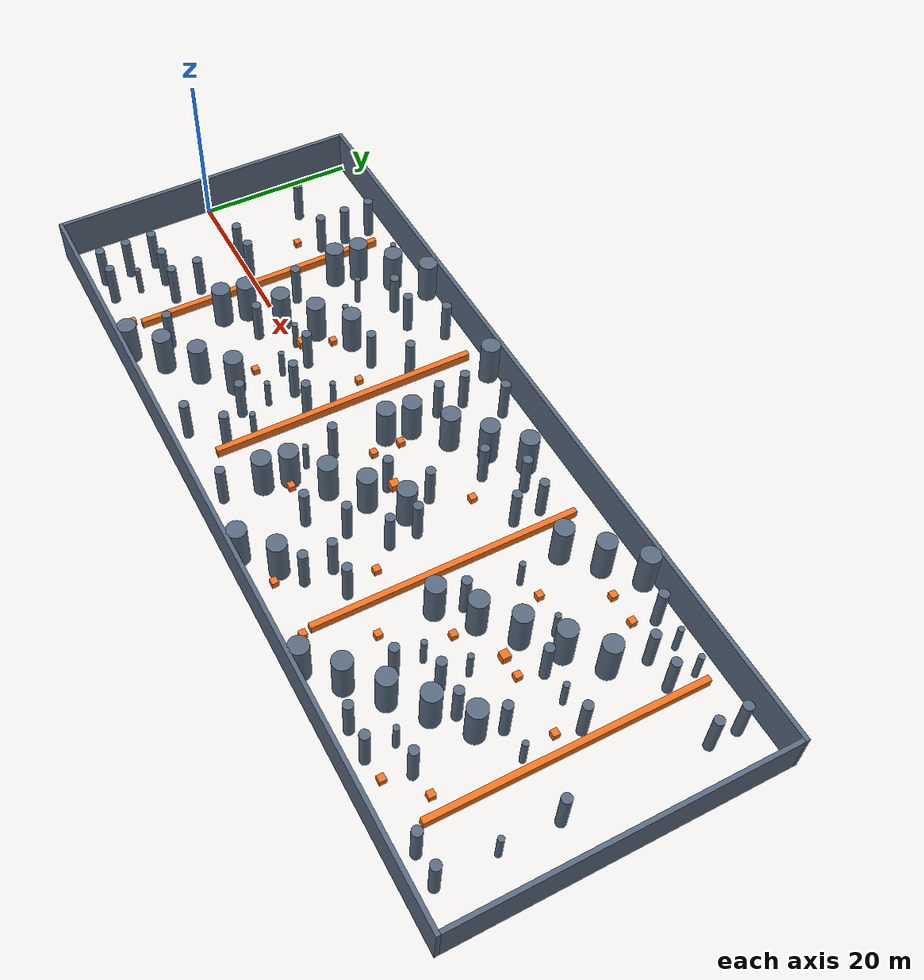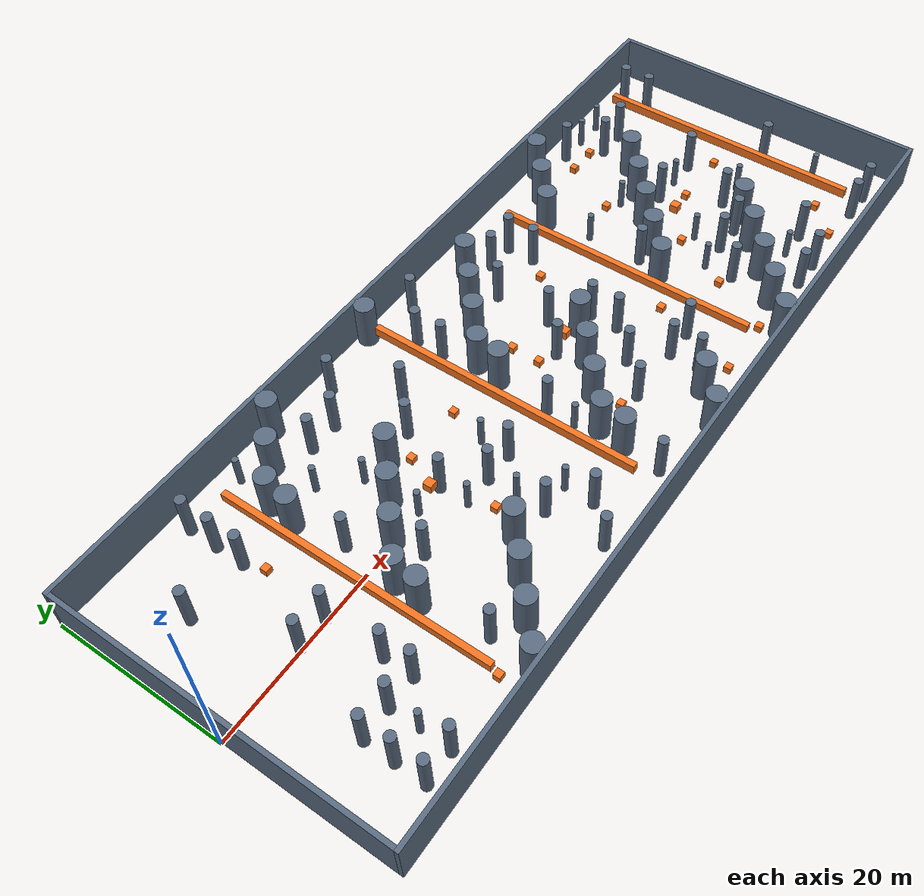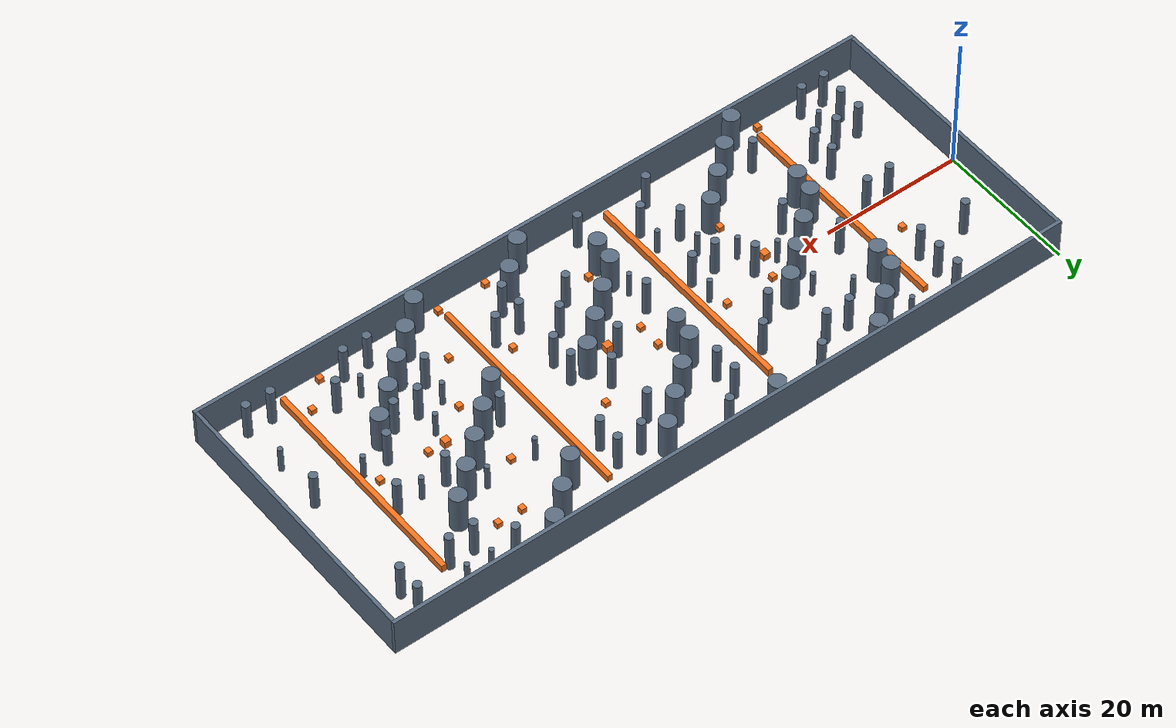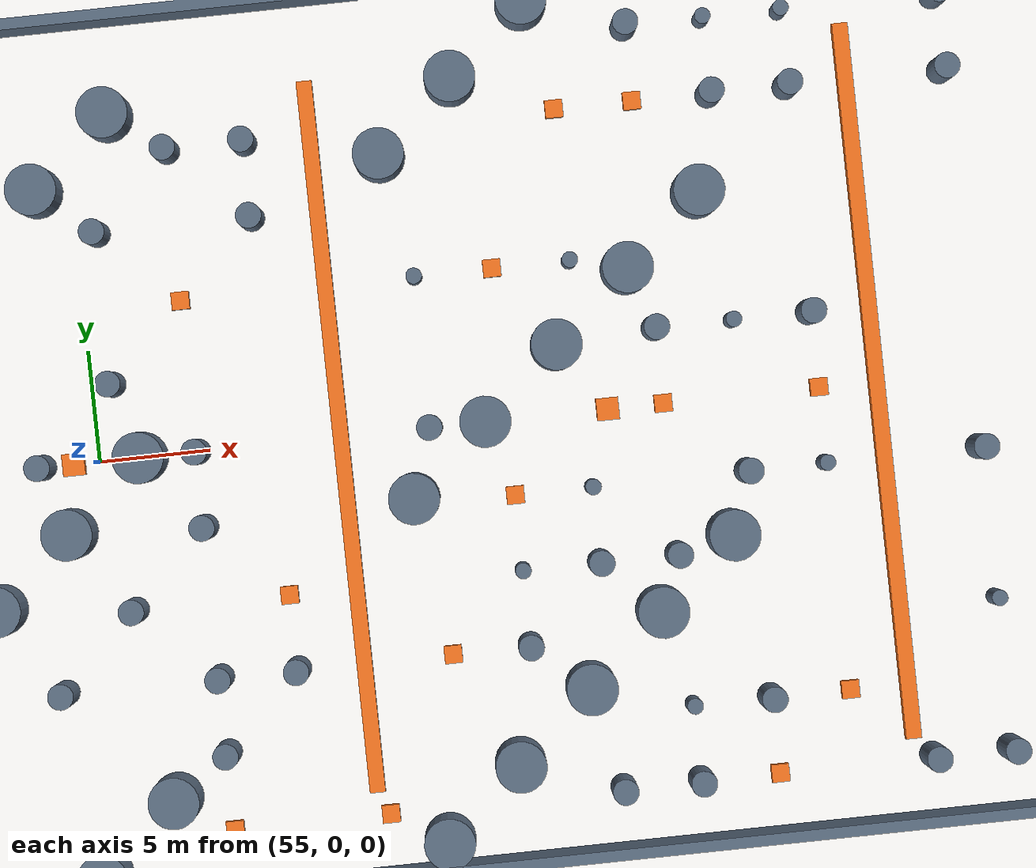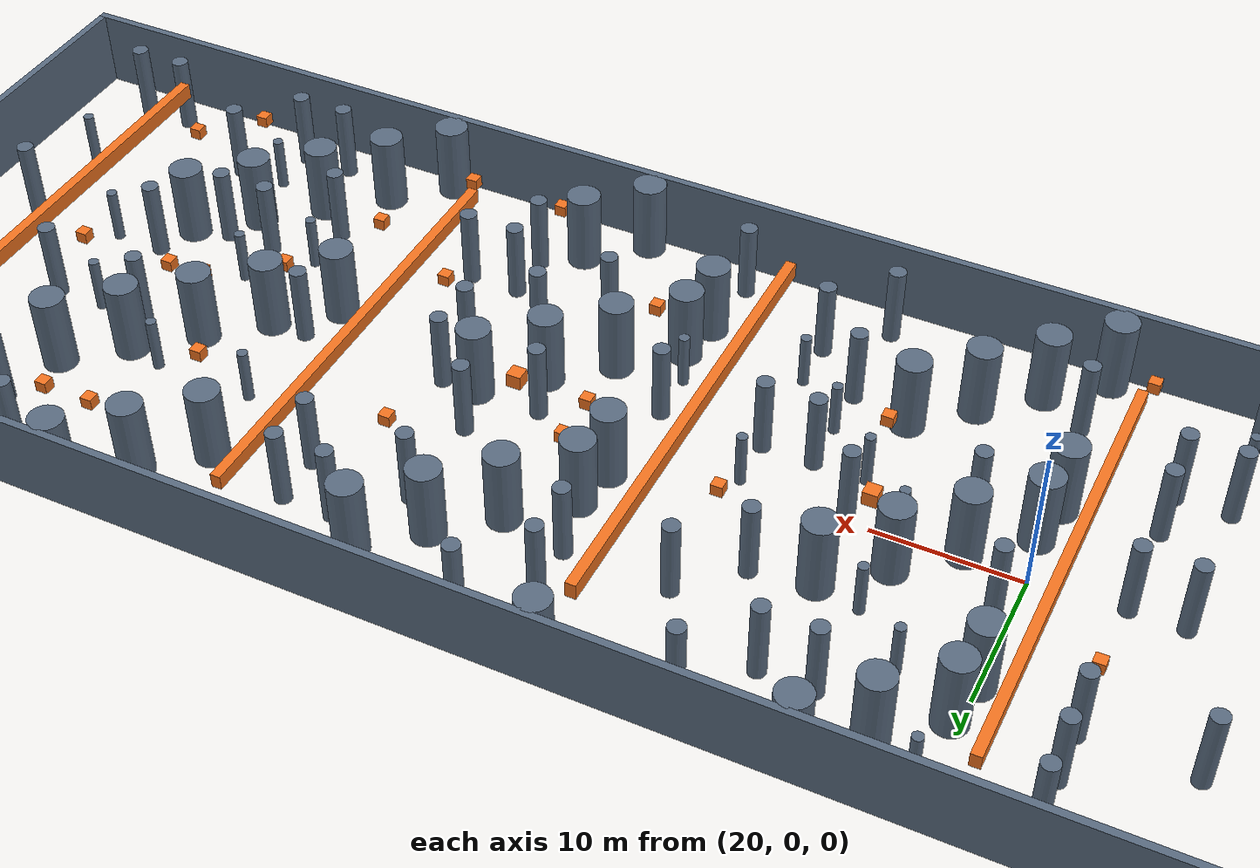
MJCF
<mujoco model="D06">
  <compiler angle="radian" />
  <include file="boundary.xml" />
  <custom>
    <text name="scene_metadata" data="{&quot;id&quot;: &quot;D06&quot;, &quot;difficulty&quot;: &quot;hard&quot;, &quot;title&quot;: &quot;Hybrid long 3D moving gates with moving crossbars&quot;, &quot;source&quot;: &quot;NavRL+P2M&quot;, &quot;dynamic&quot;: true, &quot;review_duration_s&quot;: 45.0, &quot;target_field_obstacles&quot;: 150, &quot;layout_policy&quot;: &quot;retained v4 3D extension; long crossbars vertically oscillate; no reserved route&quot;, &quot;benchmark_role&quot;: &quot;3d-extension&quot;, &quot;topology_acceptance&quot;: {&quot;require_direct_route_blocked&quot;: true, &quot;require_reachable&quot;: true, &quot;max_full_length_straight_lanes&quot;: 0, &quot;max_clear_straight_run_m&quot;: 35.0}, &quot;moving_crossbars&quot;: 4, &quot;obstacle_metadata&quot;: [{&quot;role&quot;: &quot;moving_crossbar&quot;}, {&quot;role&quot;: &quot;layout_core&quot;}, {&quot;role&quot;: &quot;moving_crossbar&quot;}, {&quot;role&quot;: &quot;layout_core&quot;}, {&quot;role&quot;: &quot;moving_crossbar&quot;}, {&quot;role&quot;: &quot;layout_core&quot;}, {&quot;role&quot;: &quot;moving_crossbar&quot;}, {&quot;role&quot;: &quot;anti_straight&quot;}, {&quot;role&quot;: &quot;anti_straight&quot;}, {&quot;role&quot;: &quot;anti_straight&quot;}, {&quot;role&quot;: &quot;anti_straight&quot;}, {&quot;role&quot;: &quot;anti_straight&quot;}, {&quot;role&quot;: &quot;anti_straight&quot;}, {&quot;role&quot;: &quot;anti_straight&quot;}, {&quot;role&quot;: &quot;anti_straight&quot;}, {&quot;role&quot;: &quot;anti_straight&quot;}, {&quot;role&quot;: &quot;anti_straight&quot;}, {&quot;role&quot;: &quot;anti_straight&quot;}, {&quot;role&quot;: &quot;anti_straight&quot;}, {&quot;role&quot;: &quot;anti_straight&quot;}, {&quot;role&quot;: &quot;anti_straight&quot;}, {&quot;role&quot;: &quot;anti_straight&quot;}, {&quot;role&quot;: &quot;anti_straight&quot;}, {&quot;role&quot;: &quot;anti_straight&quot;}, {&quot;role&quot;: &quot;anti_straight&quot;}, {&quot;role&quot;: &quot;anti_straight&quot;}, {&quot;role&quot;: &quot;anti_straight&quot;}, {&quot;role&quot;: &quot;anti_straight&quot;}, {&quot;role&quot;: &quot;anti_straight&quot;}, {&quot;role&quot;: &quot;anti_straight&quot;}, {&quot;role&quot;: &quot;anti_straight&quot;}, {&quot;role&quot;: &quot;anti_straight&quot;}, {&quot;role&quot;: &quot;anti_straight&quot;}, {&quot;role&quot;: &quot;anti_straight&quot;}, {&quot;role&quot;: &quot;anti_straight&quot;}, {&quot;role&quot;: &quot;anti_straight&quot;}, {&quot;role&quot;: &quot;anti_straight&quot;}, {&quot;role&quot;: &quot;anti_straight&quot;}, {&quot;role&quot;: &quot;anti_straight&quot;}, {&quot;role&quot;: &quot;anti_straight&quot;}, {&quot;role&quot;: &quot;anti_straight&quot;}, {&quot;role&quot;: &quot;anti_straight&quot;}, {&quot;role&quot;: &quot;anti_straight&quot;}, {&quot;role&quot;: &quot;anti_straight&quot;}, {&quot;role&quot;: &quot;anti_straight&quot;}, {&quot;role&quot;: &quot;anti_straight&quot;}, {&quot;role&quot;: &quot;dynamic_field&quot;}, {&quot;role&quot;: &quot;field&quot;}, {&quot;role&quot;: &quot;field&quot;}, {&quot;role&quot;: &quot;field&quot;}, {&quot;role&quot;: &quot;field&quot;}, {&quot;role&quot;: &quot;dynamic_field&quot;}, {&quot;role&quot;: &quot;field&quot;}, {&quot;role&quot;: &quot;field&quot;}, {&quot;role&quot;: &quot;field&quot;}, {&quot;role&quot;: &quot;field&quot;}, {&quot;role&quot;: &quot;dynamic_field&quot;}, {&quot;role&quot;: &quot;field&quot;}, {&quot;role&quot;: &quot;field&quot;}, {&quot;role&quot;: &quot;field&quot;}, {&quot;role&quot;: &quot;field&quot;}, {&quot;role&quot;: &quot;dynamic_field&quot;}, {&quot;role&quot;: &quot;field&quot;}, {&quot;role&quot;: &quot;field&quot;}, {&quot;role&quot;: &quot;field&quot;}, {&quot;role&quot;: &quot;field&quot;}, {&quot;role&quot;: &quot;dynamic_field&quot;}, {&quot;role&quot;: &quot;field&quot;}, {&quot;role&quot;: &quot;field&quot;}, {&quot;role&quot;: &quot;field&quot;}, {&quot;role&quot;: &quot;field&quot;}, {&quot;role&quot;: &quot;dynamic_field&quot;}, {&quot;role&quot;: &quot;field&quot;}, {&quot;role&quot;: &quot;field&quot;}, {&quot;role&quot;: &quot;field&quot;}, {&quot;role&quot;: &quot;field&quot;}, {&quot;role&quot;: &quot;dynamic_field&quot;}, {&quot;role&quot;: &quot;field&quot;}, {&quot;role&quot;: &quot;field&quot;}, {&quot;role&quot;: &quot;field&quot;}, {&quot;role&quot;: &quot;field&quot;}, {&quot;role&quot;: &quot;dynamic_field&quot;}, {&quot;role&quot;: &quot;field&quot;}, {&quot;role&quot;: &quot;field&quot;}, {&quot;role&quot;: &quot;field&quot;}, {&quot;role&quot;: &quot;field&quot;}, {&quot;role&quot;: &quot;dynamic_field&quot;}, {&quot;role&quot;: &quot;field&quot;}, {&quot;role&quot;: &quot;field&quot;}, {&quot;role&quot;: &quot;field&quot;}, {&quot;role&quot;: &quot;field&quot;}, {&quot;role&quot;: &quot;dynamic_field&quot;}, {&quot;role&quot;: &quot;field&quot;}, {&quot;role&quot;: &quot;field&quot;}, {&quot;role&quot;: &quot;field&quot;}, {&quot;role&quot;: &quot;field&quot;}, {&quot;role&quot;: &quot;dynamic_field&quot;}, {&quot;role&quot;: &quot;field&quot;}, {&quot;role&quot;: &quot;field&quot;}, {&quot;role&quot;: &quot;field&quot;}, {&quot;role&quot;: &quot;field&quot;}, {&quot;role&quot;: &quot;dynamic_field&quot;}, {&quot;role&quot;: &quot;field&quot;}, {&quot;role&quot;: &quot;field&quot;}, {&quot;role&quot;: &quot;field&quot;}, {&quot;role&quot;: &quot;field&quot;}, {&quot;role&quot;: &quot;dynamic_field&quot;}, {&quot;role&quot;: &quot;field&quot;}, {&quot;role&quot;: &quot;field&quot;}, {&quot;role&quot;: &quot;field&quot;}, {&quot;role&quot;: &quot;field&quot;}, {&quot;role&quot;: &quot;dynamic_field&quot;}, {&quot;role&quot;: &quot;field&quot;}, {&quot;role&quot;: &quot;field&quot;}, {&quot;role&quot;: &quot;field&quot;}, {&quot;role&quot;: &quot;field&quot;}, {&quot;role&quot;: &quot;dynamic_field&quot;}, {&quot;role&quot;: &quot;field&quot;}, {&quot;role&quot;: &quot;field&quot;}, {&quot;role&quot;: &quot;field&quot;}, {&quot;role&quot;: &quot;field&quot;}, {&quot;role&quot;: &quot;dynamic_field&quot;}, {&quot;role&quot;: &quot;field&quot;}, {&quot;role&quot;: &quot;field&quot;}, {&quot;role&quot;: &quot;field&quot;}, {&quot;role&quot;: &quot;field&quot;}, {&quot;role&quot;: &quot;dynamic_field&quot;}, {&quot;role&quot;: &quot;field&quot;}, {&quot;role&quot;: &quot;field&quot;}, {&quot;role&quot;: &quot;field&quot;}, {&quot;role&quot;: &quot;field&quot;}, {&quot;role&quot;: &quot;dynamic_field&quot;}, {&quot;role&quot;: &quot;field&quot;}, {&quot;role&quot;: &quot;field&quot;}, {&quot;role&quot;: &quot;field&quot;}, {&quot;role&quot;: &quot;field&quot;}, {&quot;role&quot;: &quot;dynamic_field&quot;}, {&quot;role&quot;: &quot;field&quot;}, {&quot;role&quot;: &quot;field&quot;}, {&quot;role&quot;: &quot;field&quot;}, {&quot;role&quot;: &quot;field&quot;}, {&quot;role&quot;: &quot;dynamic_field&quot;}, {&quot;role&quot;: &quot;field&quot;}, {&quot;role&quot;: &quot;field&quot;}, {&quot;role&quot;: &quot;field&quot;}, {&quot;role&quot;: &quot;field&quot;}, {&quot;role&quot;: &quot;dynamic_field&quot;}, {&quot;role&quot;: &quot;field&quot;}, {&quot;role&quot;: &quot;field&quot;}, {&quot;role&quot;: &quot;field&quot;}]}" />
  </custom>
  <worldbody>
    <body name="obstacle_4" mocap="true" pos="18 0 2.7000000000000002" user="2 0 0 0.69999999999999996 8 0.25">
      <geom name="obstacle_geom_4" type="box" size="0.34999999999999998 16 0.5" rgba="0.95 0.45 0.12 1" />
    </body>
    <body name="obstacle_5" mocap="true" pos="30 0 3" user="2 0 7 0 9 0.20000000000000001">
      <geom name="obstacle_geom_5" type="box" size="0.5 0.5 0.5" rgba="0.95 0.45 0.12 1" />
    </body>
    <body name="obstacle_6" mocap="true" pos="42 0 4.5" user="2 0 0 0.5 9 0.75">
      <geom name="obstacle_geom_6" type="box" size="0.34999999999999998 16 0.55000000000000004" rgba="0.95 0.45 0.12 1" />
    </body>
    <body name="obstacle_7" mocap="true" pos="54 0 3" user="2 0 7 0 10 0.59999999999999998">
      <geom name="obstacle_geom_7" type="box" size="0.5 0.5 0.5" rgba="0.95 0.45 0.12 1" />
    </body>
    <body name="obstacle_8" mocap="true" pos="66 0 2.7000000000000002" user="2 0 0 0.69999999999999996 10 0.25">
      <geom name="obstacle_geom_8" type="box" size="0.34999999999999998 16 0.5" rgba="0.95 0.45 0.12 1" />
    </body>
    <body name="obstacle_9" mocap="true" pos="78 0 3" user="2 0 7 0 11 0.34999999999999998">
      <geom name="obstacle_geom_9" type="box" size="0.5 0.5 0.5" rgba="0.95 0.45 0.12 1" />
    </body>
    <body name="obstacle_10" mocap="true" pos="90 0 4.4000000000000004" user="2 0 0 0.5 11 0.75">
      <geom name="obstacle_geom_10" type="box" size="0.34999999999999998 16 0.55000000000000004" rgba="0.95 0.45 0.12 1" />
    </body>
    <body name="obstacle_11" mocap="true" pos="20.5 -18.5 3.25" user="0 0 0 0 0 0">
      <geom name="obstacle_geom_11" type="cylinder" size="1.1499999999999999 2.75" rgba="0.35 0.42 0.5 1" />
    </body>
    <body name="obstacle_12" mocap="true" pos="24 -15.416666666666666 3.25" user="0 0 0 0 0 0">
      <geom name="obstacle_geom_12" type="cylinder" size="1.1499999999999999 2.75" rgba="0.35 0.42 0.5 1" />
    </body>
    <body name="obstacle_13" mocap="true" pos="27.5 -12.333333333333332 3.25" user="0 0 0 0 0 0">
      <geom name="obstacle_geom_13" type="cylinder" size="1.1499999999999999 2.75" rgba="0.35 0.42 0.5 1" />
    </body>
    <body name="obstacle_14" mocap="true" pos="31 -9.25 3.25" user="0 0 0 0 0 0">
      <geom name="obstacle_geom_14" type="cylinder" size="1.1499999999999999 2.75" rgba="0.35 0.42 0.5 1" />
    </body>
    <body name="obstacle_15" mocap="true" pos="20 -6.1666666666666661 3.25" user="0 0 0 0 0 0">
      <geom name="obstacle_geom_15" type="cylinder" size="1.1499999999999999 2.75" rgba="0.35 0.42 0.5 1" />
    </body>
    <body name="obstacle_16" mocap="true" pos="20.5 -3.0833333333333321 3.25" user="0 0 0 0 0 0">
      <geom name="obstacle_geom_16" type="cylinder" size="1.1499999999999999 2.75" rgba="0.35 0.42 0.5 1" />
    </body>
    <body name="obstacle_17" mocap="true" pos="24 0 3.25" user="0 0 0 0 0 0">
      <geom name="obstacle_geom_17" type="cylinder" size="1.1499999999999999 2.75" rgba="0.35 0.42 0.5 1" />
    </body>
    <body name="obstacle_18" mocap="true" pos="27.5 3.0833333333333357 3.25" user="0 0 0 0 0 0">
      <geom name="obstacle_geom_18" type="cylinder" size="1.1499999999999999 2.75" rgba="0.35 0.42 0.5 1" />
    </body>
    <body name="obstacle_19" mocap="true" pos="31 6.1666666666666679 3.25" user="0 0 0 0 0 0">
      <geom name="obstacle_geom_19" type="cylinder" size="1.1499999999999999 2.75" rgba="0.35 0.42 0.5 1" />
    </body>
    <body name="obstacle_20" mocap="true" pos="20 9.25 3.25" user="0 0 0 0 0 0">
      <geom name="obstacle_geom_20" type="cylinder" size="1.1499999999999999 2.75" rgba="0.35 0.42 0.5 1" />
    </body>
    <body name="obstacle_21" mocap="true" pos="20.5 12.333333333333336 3.25" user="0 0 0 0 0 0">
      <geom name="obstacle_geom_21" type="cylinder" size="1.1499999999999999 2.75" rgba="0.35 0.42 0.5 1" />
    </body>
    <body name="obstacle_22" mocap="true" pos="24 15.416666666666671 3.25" user="0 0 0 0 0 0">
      <geom name="obstacle_geom_22" type="cylinder" size="1.1499999999999999 2.75" rgba="0.35 0.42 0.5 1" />
    </body>
    <body name="obstacle_23" mocap="true" pos="27.5 18.5 3.25" user="0 0 0 0 0 0">
      <geom name="obstacle_geom_23" type="cylinder" size="1.1499999999999999 2.75" rgba="0.35 0.42 0.5 1" />
    </body>
    <body name="obstacle_24" mocap="true" pos="53.5 -18.5 3.25" user="0 0 0 0 0 0">
      <geom name="obstacle_geom_24" type="cylinder" size="1.1499999999999999 2.75" rgba="0.35 0.42 0.5 1" />
    </body>
    <body name="obstacle_25" mocap="true" pos="57 -15.416666666666666 3.25" user="0 0 0 0 0 0">
      <geom name="obstacle_geom_25" type="cylinder" size="1.1499999999999999 2.75" rgba="0.35 0.42 0.5 1" />
    </body>
    <body name="obstacle_26" mocap="true" pos="46 -12.333333333333332 3.25" user="0 0 0 0 0 0">
      <geom name="obstacle_geom_26" type="cylinder" size="1.1499999999999999 2.75" rgba="0.35 0.42 0.5 1" />
    </body>
    <body name="obstacle_27" mocap="true" pos="46.5 -9.25 3.25" user="0 0 0 0 0 0">
      <geom name="obstacle_geom_27" type="cylinder" size="1.1499999999999999 2.75" rgba="0.35 0.42 0.5 1" />
    </body>
    <body name="obstacle_28" mocap="true" pos="50 -6.1666666666666661 3.25" user="0 0 0 0 0 0">
      <geom name="obstacle_geom_28" type="cylinder" size="1.1499999999999999 2.75" rgba="0.35 0.42 0.5 1" />
    </body>
    <body name="obstacle_29" mocap="true" pos="53.5 -3.0833333333333321 3.25" user="0 0 0 0 0 0">
      <geom name="obstacle_geom_29" type="cylinder" size="1.1499999999999999 2.75" rgba="0.35 0.42 0.5 1" />
    </body>
    <body name="obstacle_30" mocap="true" pos="57 0 3.25" user="0 0 0 0 0 0">
      <geom name="obstacle_geom_30" type="cylinder" size="1.1499999999999999 2.75" rgba="0.35 0.42 0.5 1" />
    </body>
    <body name="obstacle_31" mocap="true" pos="46 3.0833333333333357 3.25" user="0 0 0 0 0 0">
      <geom name="obstacle_geom_31" type="cylinder" size="1.1499999999999999 2.75" rgba="0.35 0.42 0.5 1" />
    </body>
    <body name="obstacle_32" mocap="true" pos="46.5 6.1666666666666679 3.25" user="0 0 0 0 0 0">
      <geom name="obstacle_geom_32" type="cylinder" size="1.1499999999999999 2.75" rgba="0.35 0.42 0.5 1" />
    </body>
    <body name="obstacle_33" mocap="true" pos="50 9.25 3.25" user="0 0 0 0 0 0">
      <geom name="obstacle_geom_33" type="cylinder" size="1.1499999999999999 2.75" rgba="0.35 0.42 0.5 1" />
    </body>
    <body name="obstacle_34" mocap="true" pos="53.5 12.333333333333336 3.25" user="0 0 0 0 0 0">
      <geom name="obstacle_geom_34" type="cylinder" size="1.1499999999999999 2.75" rgba="0.35 0.42 0.5 1" />
    </body>
    <body name="obstacle_35" mocap="true" pos="57 15.416666666666671 3.25" user="0 0 0 0 0 0">
      <geom name="obstacle_geom_35" type="cylinder" size="1.1499999999999999 2.75" rgba="0.35 0.42 0.5 1" />
    </body>
    <body name="obstacle_36" mocap="true" pos="43 18.5 3.25" user="0 0 0 0 0 0">
      <geom name="obstacle_geom_36" type="cylinder" size="1.1499999999999999 2.75" rgba="0.35 0.42 0.5 1" />
    </body>
    <body name="obstacle_37" mocap="true" pos="69 -18.5 3.25" user="0 0 0 0 0 0">
      <geom name="obstacle_geom_37" type="cylinder" size="1.1499999999999999 2.75" rgba="0.35 0.42 0.5 1" />
    </body>
    <body name="obstacle_38" mocap="true" pos="72.5 -15.416666666666666 3.25" user="0 0 0 0 0 0">
      <geom name="obstacle_geom_38" type="cylinder" size="1.1499999999999999 2.75" rgba="0.35 0.42 0.5 1" />
    </body>
    <body name="obstacle_39" mocap="true" pos="76 -12.333333333333332 3.25" user="0 0 0 0 0 0">
      <geom name="obstacle_geom_39" type="cylinder" size="1.1499999999999999 2.75" rgba="0.35 0.42 0.5 1" />
    </body>
    <body name="obstacle_40" mocap="true" pos="79.5 -9.25 3.25" user="0 0 0 0 0 0">
      <geom name="obstacle_geom_40" type="cylinder" size="1.1499999999999999 2.75" rgba="0.35 0.42 0.5 1" />
    </body>
    <body name="obstacle_41" mocap="true" pos="83 -6.1666666666666661 3.25" user="0 0 0 0 0 0">
      <geom name="obstacle_geom_41" type="cylinder" size="1.1499999999999999 2.75" rgba="0.35 0.42 0.5 1" />
    </body>
    <body name="obstacle_42" mocap="true" pos="69 -3.0833333333333321 3.25" user="0 0 0 0 0 0">
      <geom name="obstacle_geom_42" type="cylinder" size="1.1499999999999999 2.75" rgba="0.35 0.42 0.5 1" />
    </body>
    <body name="obstacle_43" mocap="true" pos="72.5 0 3.25" user="0 0 0 0 0 0">
      <geom name="obstacle_geom_43" type="cylinder" size="1.1499999999999999 2.75" rgba="0.35 0.42 0.5 1" />
    </body>
    <body name="obstacle_44" mocap="true" pos="76 3.0833333333333357 3.25" user="0 0 0 0 0 0">
      <geom name="obstacle_geom_44" type="cylinder" size="1.1499999999999999 2.75" rgba="0.35 0.42 0.5 1" />
    </body>
    <body name="obstacle_45" mocap="true" pos="79.5 6.1666666666666679 3.25" user="0 0 0 0 0 0">
      <geom name="obstacle_geom_45" type="cylinder" size="1.1499999999999999 2.75" rgba="0.35 0.42 0.5 1" />
    </body>
    <body name="obstacle_46" mocap="true" pos="83 9.25 3.25" user="0 0 0 0 0 0">
      <geom name="obstacle_geom_46" type="cylinder" size="1.1499999999999999 2.75" rgba="0.35 0.42 0.5 1" />
    </body>
    <body name="obstacle_47" mocap="true" pos="69 12.333333333333336 3.25" user="0 0 0 0 0 0">
      <geom name="obstacle_geom_47" type="cylinder" size="1.1499999999999999 2.75" rgba="0.35 0.42 0.5 1" />
    </body>
    <body name="obstacle_48" mocap="true" pos="72.5 15.416666666666671 3.25" user="0 0 0 0 0 0">
      <geom name="obstacle_geom_48" type="cylinder" size="1.1499999999999999 2.75" rgba="0.35 0.42 0.5 1" />
    </body>
    <body name="obstacle_49" mocap="true" pos="76 18.5 3.25" user="0 0 0 0 0 0">
      <geom name="obstacle_geom_49" type="cylinder" size="1.1499999999999999 2.75" rgba="0.35 0.42 0.5 1" />
    </body>
    <body name="obstacle_50" mocap="true" pos="49 -10.199999999999999 3" user="2 0 1.8 0 9 0">
      <geom name="obstacle_geom_50" type="box" size="0.40000000000000002 0.40000000000000002 0.40000000000000002" rgba="0.95 0.45 0.12 1" />
    </body>
    <body name="obstacle_51" mocap="true" pos="14 17 3.25" user="0 0 0 0 0 0">
      <geom name="obstacle_geom_51" type="cylinder" size="0.57999999999999996 2.75" rgba="0.35 0.42 0.5 1" />
    </body>
    <body name="obstacle_52" mocap="true" pos="14 13.600000000000001 3.25" user="0 0 0 0 0 0">
      <geom name="obstacle_geom_52" type="cylinder" size="0.57999999999999996 2.75" rgba="0.35 0.42 0.5 1" />
    </body>
    <body name="obstacle_53" mocap="true" pos="80.5 -6.7999999999999989 3.25" user="0 0 0 0 0 0">
      <geom name="obstacle_geom_53" type="cylinder" size="0.57999999999999996 2.75" rgba="0.35 0.42 0.5 1" />
    </body>
    <body name="obstacle_54" mocap="true" pos="28 0 2.3999999999999999" user="0 0 0 0 0 0">
      <geom name="obstacle_geom_54" type="cylinder" size="0.35999999999999999 1.8999999999999999" rgba="0.35 0.42 0.5 1" />
    </body>
    <body name="obstacle_55" mocap="true" pos="77 13.600000000000001 3" user="2 0 1.8 0 10 0.55000000000000004">
      <geom name="obstacle_geom_55" type="box" size="0.40000000000000002 0.40000000000000002 0.40000000000000002" rgba="0.95 0.45 0.12 1" />
    </body>
    <body name="obstacle_56" mocap="true" pos="14 -6.7999999999999989 3.25" user="0 0 0 0 0 0">
      <geom name="obstacle_geom_56" type="cylinder" size="0.57999999999999996 2.75" rgba="0.35 0.42 0.5 1" />
    </body>
    <body name="obstacle_57" mocap="true" pos="10.5 0 3.25" user="0 0 0 0 0 0">
      <geom name="obstacle_geom_57" type="cylinder" size="0.57999999999999996 2.75" rgba="0.35 0.42 0.5 1" />
    </body>
    <body name="obstacle_58" mocap="true" pos="84 3.4000000000000021 2.3999999999999999" user="0 0 0 0 0 0">
      <geom name="obstacle_geom_58" type="cylinder" size="0.35999999999999999 1.8999999999999999" rgba="0.35 0.42 0.5 1" />
    </body>
    <body name="obstacle_59" mocap="true" pos="94.5 -17 3.25" user="0 0 0 0 0 0">
      <geom name="obstacle_geom_59" type="cylinder" size="0.57999999999999996 2.75" rgba="0.35 0.42 0.5 1" />
    </body>
    <body name="obstacle_60" mocap="true" pos="87.5 -13.6 3" user="2 0 1.8 0 11 0.10000000000000001">
      <geom name="obstacle_geom_60" type="box" size="0.40000000000000002 0.40000000000000002 0.40000000000000002" rgba="0.95 0.45 0.12 1" />
    </body>
    <body name="obstacle_61" mocap="true" pos="84 -3.3999999999999986 3.25" user="0 0 0 0 0 0">
      <geom name="obstacle_geom_61" type="cylinder" size="0.57999999999999996 2.75" rgba="0.35 0.42 0.5 1" />
    </body>
    <body name="obstacle_62" mocap="true" pos="77 6.8000000000000043 2.3999999999999999" user="0 0 0 0 0 0">
      <geom name="obstacle_geom_62" type="cylinder" size="0.35999999999999999 1.8999999999999999" rgba="0.35 0.42 0.5 1" />
    </body>
    <body name="obstacle_63" mocap="true" pos="56 10.200000000000003 3.25" user="0 0 0 0 0 0">
      <geom name="obstacle_geom_63" type="cylinder" size="0.57999999999999996 2.75" rgba="0.35 0.42 0.5 1" />
    </body>
    <body name="obstacle_64" mocap="true" pos="7 -10.199999999999999 3.25" user="0 0 0 0 0 0">
      <geom name="obstacle_geom_64" type="cylinder" size="0.57999999999999996 2.75" rgba="0.35 0.42 0.5 1" />
    </body>
    <body name="obstacle_65" mocap="true" pos="59.5 -17 3" user="2 0 1.8 0 12 0.65000000000000002">
      <geom name="obstacle_geom_65" type="box" size="0.40000000000000002 0.40000000000000002 0.40000000000000002" rgba="0.95 0.45 0.12 1" />
    </body>
    <body name="obstacle_66" mocap="true" pos="31.5 -3.3999999999999986 2.3999999999999999" user="0 0 0 0 0 0">
      <geom name="obstacle_geom_66" type="cylinder" size="0.35999999999999999 1.8999999999999999" rgba="0.35 0.42 0.5 1" />
    </body>
    <body name="obstacle_67" mocap="true" pos="80.5 -17 3.25" user="0 0 0 0 0 0">
      <geom name="obstacle_geom_67" type="cylinder" size="0.57999999999999996 2.75" rgba="0.35 0.42 0.5 1" />
    </body>
    <body name="obstacle_68" mocap="true" pos="38.5 10.200000000000003 3.25" user="0 0 0 0 0 0">
      <geom name="obstacle_geom_68" type="cylinder" size="0.57999999999999996 2.75" rgba="0.35 0.42 0.5 1" />
    </body>
    <body name="obstacle_69" mocap="true" pos="28 13.600000000000001 3.25" user="0 0 0 0 0 0">
      <geom name="obstacle_geom_69" type="cylinder" size="0.57999999999999996 2.75" rgba="0.35 0.42 0.5 1" />
    </body>
    <body name="obstacle_70" mocap="true" pos="80.5 0 3" user="2 0 1.8 0 9 0.20000000000000001">
      <geom name="obstacle_geom_70" type="box" size="0.40000000000000002 0.40000000000000002 0.40000000000000002" rgba="0.95 0.45 0.12 1" />
    </body>
    <body name="obstacle_71" mocap="true" pos="45.5 13.600000000000001 3.25" user="0 0 0 0 0 0">
      <geom name="obstacle_geom_71" type="cylinder" size="0.57999999999999996 2.75" rgba="0.35 0.42 0.5 1" />
    </body>
    <body name="obstacle_72" mocap="true" pos="49 17 3.25" user="0 0 0 0 0 0">
      <geom name="obstacle_geom_72" type="cylinder" size="0.57999999999999996 2.75" rgba="0.35 0.42 0.5 1" />
    </body>
    <body name="obstacle_73" mocap="true" pos="59.5 -10.199999999999999 3.25" user="0 0 0 0 0 0">
      <geom name="obstacle_geom_73" type="cylinder" size="0.57999999999999996 2.75" rgba="0.35 0.42 0.5 1" />
    </body>
    <body name="obstacle_74" mocap="true" pos="70 6.8000000000000043 2.3999999999999999" user="0 0 0 0 0 0">
      <geom name="obstacle_geom_74" type="cylinder" size="0.35999999999999999 1.8999999999999999" rgba="0.35 0.42 0.5 1" />
    </body>
    <body name="obstacle_75" mocap="true" pos="70 -10.199999999999999 3" user="2 0 1.8 0 10 0.75">
      <geom name="obstacle_geom_75" type="box" size="0.40000000000000002 0.40000000000000002 0.40000000000000002" rgba="0.95 0.45 0.12 1" />
    </body>
    <body name="obstacle_76" mocap="true" pos="52.5 -10.199999999999999 3.25" user="0 0 0 0 0 0">
      <geom name="obstacle_geom_76" type="cylinder" size="0.57999999999999996 2.75" rgba="0.35 0.42 0.5 1" />
    </body>
    <body name="obstacle_77" mocap="true" pos="91 -17 3.25" user="0 0 0 0 0 0">
      <geom name="obstacle_geom_77" type="cylinder" size="0.57999999999999996 2.75" rgba="0.35 0.42 0.5 1" />
    </body>
    <body name="obstacle_78" mocap="true" pos="10.5 -13.6 2.3999999999999999" user="0 0 0 0 0 0">
      <geom name="obstacle_geom_78" type="cylinder" size="0.35999999999999999 1.8999999999999999" rgba="0.35 0.42 0.5 1" />
    </body>
    <body name="obstacle_79" mocap="true" pos="87.5 13.600000000000001 3.25" user="0 0 0 0 0 0">
      <geom name="obstacle_geom_79" type="cylinder" size="0.57999999999999996 2.75" rgba="0.35 0.42 0.5 1" />
    </body>
    <body name="obstacle_80" mocap="true" pos="31.5 -6.7999999999999989 3" user="2 0 1.8 0 11 0.29999999999999999">
      <geom name="obstacle_geom_80" type="box" size="0.40000000000000002 0.40000000000000002 0.40000000000000002" rgba="0.95 0.45 0.12 1" />
    </body>
    <body name="obstacle_81" mocap="true" pos="94.5 13.600000000000001 3.25" user="0 0 0 0 0 0">
      <geom name="obstacle_geom_81" type="cylinder" size="0.57999999999999996 2.75" rgba="0.35 0.42 0.5 1" />
    </body>
    <body name="obstacle_82" mocap="true" pos="38.5 -10.199999999999999 2.3999999999999999" user="0 0 0 0 0 0">
      <geom name="obstacle_geom_82" type="cylinder" size="0.35999999999999999 1.8999999999999999" rgba="0.35 0.42 0.5 1" />
    </body>
    <body name="obstacle_83" mocap="true" pos="84 13.600000000000001 3.25" user="0 0 0 0 0 0">
      <geom name="obstacle_geom_83" type="cylinder" size="0.57999999999999996 2.75" rgba="0.35 0.42 0.5 1" />
    </body>
    <body name="obstacle_84" mocap="true" pos="7 -13.6 3.25" user="0 0 0 0 0 0">
      <geom name="obstacle_geom_84" type="cylinder" size="0.57999999999999996 2.75" rgba="0.35 0.42 0.5 1" />
    </body>
    <body name="obstacle_85" mocap="true" pos="73.5 -3.3999999999999986 3" user="2 0 1.8 0 12 0.84999999999999998">
      <geom name="obstacle_geom_85" type="box" size="0.40000000000000002 0.40000000000000002 0.40000000000000002" rgba="0.95 0.45 0.12 1" />
    </body>
    <body name="obstacle_86" mocap="true" pos="35 -6.7999999999999989 2.3999999999999999" user="0 0 0 0 0 0">
      <geom name="obstacle_geom_86" type="cylinder" size="0.35999999999999999 1.8999999999999999" rgba="0.35 0.42 0.5 1" />
    </body>
    <body name="obstacle_87" mocap="true" pos="10.5 -17 3.25" user="0 0 0 0 0 0">
      <geom name="obstacle_geom_87" type="cylinder" size="0.57999999999999996 2.75" rgba="0.35 0.42 0.5 1" />
    </body>
    <body name="obstacle_88" mocap="true" pos="59.5 -3.3999999999999986 3.25" user="0 0 0 0 0 0">
      <geom name="obstacle_geom_88" type="cylinder" size="0.57999999999999996 2.75" rgba="0.35 0.42 0.5 1" />
    </body>
    <body name="obstacle_89" mocap="true" pos="7 10.200000000000003 3.25" user="0 0 0 0 0 0">
      <geom name="obstacle_geom_89" type="cylinder" size="0.57999999999999996 2.75" rgba="0.35 0.42 0.5 1" />
    </body>
    <body name="obstacle_90" mocap="true" pos="49 0 3" user="2 0 1.8 0 9 0.40000000000000002">
      <geom name="obstacle_geom_90" type="box" size="0.40000000000000002 0.40000000000000002 0.40000000000000002" rgba="0.95 0.45 0.12 1" />
    </body>
    <body name="obstacle_91" mocap="true" pos="14 -10.199999999999999 3.25" user="0 0 0 0 0 0">
      <geom name="obstacle_geom_91" type="cylinder" size="0.57999999999999996 2.75" rgba="0.35 0.42 0.5 1" />
    </body>
    <body name="obstacle_92" mocap="true" pos="45.5 -17 3.25" user="0 0 0 0 0 0">
      <geom name="obstacle_geom_92" type="cylinder" size="0.57999999999999996 2.75" rgba="0.35 0.42 0.5 1" />
    </body>
    <body name="obstacle_93" mocap="true" pos="77 -6.7999999999999989 3.25" user="0 0 0 0 0 0">
      <geom name="obstacle_geom_93" type="cylinder" size="0.57999999999999996 2.75" rgba="0.35 0.42 0.5 1" />
    </body>
    <body name="obstacle_94" mocap="true" pos="38.5 0 2.3999999999999999" user="0 0 0 0 0 0">
      <geom name="obstacle_geom_94" type="cylinder" size="0.35999999999999999 1.8999999999999999" rgba="0.35 0.42 0.5 1" />
    </body>
    <body name="obstacle_95" mocap="true" pos="63 -6.7999999999999989 3" user="2 0 1.8 0 10 0.94999999999999996">
      <geom name="obstacle_geom_95" type="box" size="0.40000000000000002 0.40000000000000002 0.40000000000000002" rgba="0.95 0.45 0.12 1" />
    </body>
    <body name="obstacle_96" mocap="true" pos="38.5 -13.6 3.25" user="0 0 0 0 0 0">
      <geom name="obstacle_geom_96" type="cylinder" size="0.57999999999999996 2.75" rgba="0.35 0.42 0.5 1" />
    </body>
    <body name="obstacle_97" mocap="true" pos="63 13.600000000000001 3.25" user="0 0 0 0 0 0">
      <geom name="obstacle_geom_97" type="cylinder" size="0.57999999999999996 2.75" rgba="0.35 0.42 0.5 1" />
    </body>
    <body name="obstacle_98" mocap="true" pos="77 -3.3999999999999986 2.3999999999999999" user="0 0 0 0 0 0">
      <geom name="obstacle_geom_98" type="cylinder" size="0.35999999999999999 1.8999999999999999" rgba="0.35 0.42 0.5 1" />
    </body>
    <body name="obstacle_99" mocap="true" pos="35 -10.199999999999999 3.25" user="0 0 0 0 0 0">
      <geom name="obstacle_geom_99" type="cylinder" size="0.57999999999999996 2.75" rgba="0.35 0.42 0.5 1" />
    </body>
    <body name="obstacle_100" mocap="true" pos="80.5 13.600000000000001 3" user="2 0 1.8 0 11 0.5">
      <geom name="obstacle_geom_100" type="box" size="0.40000000000000002 0.40000000000000002 0.40000000000000002" rgba="0.95 0.45 0.12 1" />
    </body>
    <body name="obstacle_101" mocap="true" pos="24.5 -3.3999999999999986 3.25" user="0 0 0 0 0 0">
      <geom name="obstacle_geom_101" type="cylinder" size="0.57999999999999996 2.75" rgba="0.35 0.42 0.5 1" />
    </body>
    <body name="obstacle_102" mocap="true" pos="84 17 2.3999999999999999" user="0 0 0 0 0 0">
      <geom name="obstacle_geom_102" type="cylinder" size="0.35999999999999999 1.8999999999999999" rgba="0.35 0.42 0.5 1" />
    </body>
    <body name="obstacle_103" mocap="true" pos="56 3.4000000000000021 3.25" user="0 0 0 0 0 0">
      <geom name="obstacle_geom_103" type="cylinder" size="0.57999999999999996 2.75" rgba="0.35 0.42 0.5 1" />
    </body>
    <body name="obstacle_104" mocap="true" pos="31.5 13.600000000000001 3.25" user="0 0 0 0 0 0">
      <geom name="obstacle_geom_104" type="cylinder" size="0.57999999999999996 2.75" rgba="0.35 0.42 0.5 1" />
    </body>
    <body name="obstacle_105" mocap="true" pos="66.5 -17 3" user="2 0 1.8 0 12 0.050000000000000003">
      <geom name="obstacle_geom_105" type="box" size="0.40000000000000002 0.40000000000000002 0.40000000000000002" rgba="0.95 0.45 0.12 1" />
    </body>
    <body name="obstacle_106" mocap="true" pos="87.5 17 2.3999999999999999" user="0 0 0 0 0 0">
      <geom name="obstacle_geom_106" type="cylinder" size="0.35999999999999999 1.8999999999999999" rgba="0.35 0.42 0.5 1" />
    </body>
    <body name="obstacle_107" mocap="true" pos="80.5 17 3.25" user="0 0 0 0 0 0">
      <geom name="obstacle_geom_107" type="cylinder" size="0.57999999999999996 2.75" rgba="0.35 0.42 0.5 1" />
    </body>
    <body name="obstacle_108" mocap="true" pos="35 -17 3.25" user="0 0 0 0 0 0">
      <geom name="obstacle_geom_108" type="cylinder" size="0.57999999999999996 2.75" rgba="0.35 0.42 0.5 1" />
    </body>
    <body name="obstacle_109" mocap="true" pos="80.5 3.4000000000000021 3.25" user="0 0 0 0 0 0">
      <geom name="obstacle_geom_109" type="cylinder" size="0.57999999999999996 2.75" rgba="0.35 0.42 0.5 1" />
    </body>
    <body name="obstacle_110" mocap="true" pos="49 3.4000000000000021 3" user="2 0 1.8 0 9 0.59999999999999998">
      <geom name="obstacle_geom_110" type="box" size="0.40000000000000002 0.40000000000000002 0.40000000000000002" rgba="0.95 0.45 0.12 1" />
    </body>
    <body name="obstacle_111" mocap="true" pos="14 0 3.25" user="0 0 0 0 0 0">
      <geom name="obstacle_geom_111" type="cylinder" size="0.57999999999999996 2.75" rgba="0.35 0.42 0.5 1" />
    </body>
    <body name="obstacle_112" mocap="true" pos="73.5 -10.199999999999999 3.25" user="0 0 0 0 0 0">
      <geom name="obstacle_geom_112" type="cylinder" size="0.57999999999999996 2.75" rgba="0.35 0.42 0.5 1" />
    </body>
    <body name="obstacle_113" mocap="true" pos="10.5 -10.199999999999999 3.25" user="0 0 0 0 0 0">
      <geom name="obstacle_geom_113" type="cylinder" size="0.57999999999999996 2.75" rgba="0.35 0.42 0.5 1" />
    </body>
    <body name="obstacle_114" mocap="true" pos="73.5 -6.7999999999999989 2.3999999999999999" user="0 0 0 0 0 0">
      <geom name="obstacle_geom_114" type="cylinder" size="0.35999999999999999 1.8999999999999999" rgba="0.35 0.42 0.5 1" />
    </body>
    <body name="obstacle_115" mocap="true" pos="14 6.8000000000000043 3" user="2 0 1.8 0 10 0.14999999999999999">
      <geom name="obstacle_geom_115" type="box" size="0.40000000000000002 0.40000000000000002 0.40000000000000002" rgba="0.95 0.45 0.12 1" />
    </body>
    <body name="obstacle_116" mocap="true" pos="77 -17 3.25" user="0 0 0 0 0 0">
      <geom name="obstacle_geom_116" type="cylinder" size="0.57999999999999996 2.75" rgba="0.35 0.42 0.5 1" />
    </body>
    <body name="obstacle_117" mocap="true" pos="35 -3.3999999999999986 3.25" user="0 0 0 0 0 0">
      <geom name="obstacle_geom_117" type="cylinder" size="0.57999999999999996 2.75" rgba="0.35 0.42 0.5 1" />
    </body>
    <body name="obstacle_118" mocap="true" pos="80.5 -13.6 2.3999999999999999" user="0 0 0 0 0 0">
      <geom name="obstacle_geom_118" type="cylinder" size="0.35999999999999999 1.8999999999999999" rgba="0.35 0.42 0.5 1" />
    </body>
    <body name="obstacle_119" mocap="true" pos="21 3.4000000000000021 3.25" user="0 0 0 0 0 0">
      <geom name="obstacle_geom_119" type="cylinder" size="0.57999999999999996 2.75" rgba="0.35 0.42 0.5 1" />
    </body>
    <body name="obstacle_120" mocap="true" pos="84 -17 3" user="2 0 1.8 0 11 0.69999999999999996">
      <geom name="obstacle_geom_120" type="box" size="0.40000000000000002 0.40000000000000002 0.40000000000000002" rgba="0.95 0.45 0.12 1" />
    </body>
    <body name="obstacle_121" mocap="true" pos="45.5 10.200000000000003 3.25" user="0 0 0 0 0 0">
      <geom name="obstacle_geom_121" type="cylinder" size="0.57999999999999996 2.75" rgba="0.35 0.42 0.5 1" />
    </body>
    <body name="obstacle_122" mocap="true" pos="24.5 10.200000000000003 2.3999999999999999" user="0 0 0 0 0 0">
      <geom name="obstacle_geom_122" type="cylinder" size="0.35999999999999999 1.8999999999999999" rgba="0.35 0.42 0.5 1" />
    </body>
    <body name="obstacle_123" mocap="true" pos="59.5 0 3.25" user="0 0 0 0 0 0">
      <geom name="obstacle_geom_123" type="cylinder" size="0.57999999999999996 2.75" rgba="0.35 0.42 0.5 1" />
    </body>
    <body name="obstacle_124" mocap="true" pos="56 -6.7999999999999989 3.25" user="0 0 0 0 0 0">
      <geom name="obstacle_geom_124" type="cylinder" size="0.57999999999999996 2.75" rgba="0.35 0.42 0.5 1" />
    </body>
    <body name="obstacle_125" mocap="true" pos="17.5 -17 3" user="2 0 1.8 0 12 0.25">
      <geom name="obstacle_geom_125" type="box" size="0.40000000000000002 0.40000000000000002 0.40000000000000002" rgba="0.95 0.45 0.12 1" />
    </body>
    <body name="obstacle_126" mocap="true" pos="94.5 -10.199999999999999 2.3999999999999999" user="0 0 0 0 0 0">
      <geom name="obstacle_geom_126" type="cylinder" size="0.35999999999999999 1.8999999999999999" rgba="0.35 0.42 0.5 1" />
    </body>
    <body name="obstacle_127" mocap="true" pos="59.5 -13.6 3.25" user="0 0 0 0 0 0">
      <geom name="obstacle_geom_127" type="cylinder" size="0.57999999999999996 2.75" rgba="0.35 0.42 0.5 1" />
    </body>
    <body name="obstacle_128" mocap="true" pos="59.5 13.600000000000001 3.25" user="0 0 0 0 0 0">
      <geom name="obstacle_geom_128" type="cylinder" size="0.57999999999999996 2.75" rgba="0.35 0.42 0.5 1" />
    </body>
    <body name="obstacle_129" mocap="true" pos="70 0 3.25" user="0 0 0 0 0 0">
      <geom name="obstacle_geom_129" type="cylinder" size="0.57999999999999996 2.75" rgba="0.35 0.42 0.5 1" />
    </body>
    <body name="obstacle_130" mocap="true" pos="87.5 0 3" user="2 0 1.8 0 9 0.80000000000000004">
      <geom name="obstacle_geom_130" type="box" size="0.40000000000000002 0.40000000000000002 0.40000000000000002" rgba="0.95 0.45 0.12 1" />
    </body>
    <body name="obstacle_131" mocap="true" pos="84 -13.6 3.25" user="0 0 0 0 0 0">
      <geom name="obstacle_geom_131" type="cylinder" size="0.57999999999999996 2.75" rgba="0.35 0.42 0.5 1" />
    </body>
    <body name="obstacle_132" mocap="true" pos="63 -10.199999999999999 3.25" user="0 0 0 0 0 0">
      <geom name="obstacle_geom_132" type="cylinder" size="0.57999999999999996 2.75" rgba="0.35 0.42 0.5 1" />
    </body>
    <body name="obstacle_133" mocap="true" pos="21 -13.6 3.25" user="0 0 0 0 0 0">
      <geom name="obstacle_geom_133" type="cylinder" size="0.57999999999999996 2.75" rgba="0.35 0.42 0.5 1" />
    </body>
    <body name="obstacle_134" mocap="true" pos="45.5 -6.7999999999999989 2.3999999999999999" user="0 0 0 0 0 0">
      <geom name="obstacle_geom_134" type="cylinder" size="0.35999999999999999 1.8999999999999999" rgba="0.35 0.42 0.5 1" />
    </body>
    <body name="obstacle_135" mocap="true" pos="73.5 6.8000000000000043 3" user="2 0 1.8 0 10 0.34999999999999998">
      <geom name="obstacle_geom_135" type="box" size="0.40000000000000002 0.40000000000000002 0.40000000000000002" rgba="0.95 0.45 0.12 1" />
    </body>
    <body name="obstacle_136" mocap="true" pos="7 -17 3.25" user="0 0 0 0 0 0">
      <geom name="obstacle_geom_136" type="cylinder" size="0.57999999999999996 2.75" rgba="0.35 0.42 0.5 1" />
    </body>
    <body name="obstacle_137" mocap="true" pos="35 17 3.25" user="0 0 0 0 0 0">
      <geom name="obstacle_geom_137" type="cylinder" size="0.57999999999999996 2.75" rgba="0.35 0.42 0.5 1" />
    </body>
    <body name="obstacle_138" mocap="true" pos="21 17 2.3999999999999999" user="0 0 0 0 0 0">
      <geom name="obstacle_geom_138" type="cylinder" size="0.35999999999999999 1.8999999999999999" rgba="0.35 0.42 0.5 1" />
    </body>
    <body name="obstacle_139" mocap="true" pos="87.5 3.4000000000000021 3.25" user="0 0 0 0 0 0">
      <geom name="obstacle_geom_139" type="cylinder" size="0.57999999999999996 2.75" rgba="0.35 0.42 0.5 1" />
    </body>
    <body name="obstacle_140" mocap="true" pos="38.5 3.4000000000000021 3" user="2 0 1.8 0 11 0.90000000000000002">
      <geom name="obstacle_geom_140" type="box" size="0.40000000000000002 0.40000000000000002 0.40000000000000002" rgba="0.95 0.45 0.12 1" />
    </body>
    <body name="obstacle_141" mocap="true" pos="94.5 -3.3999999999999986 3.25" user="0 0 0 0 0 0">
      <geom name="obstacle_geom_141" type="cylinder" size="0.57999999999999996 2.75" rgba="0.35 0.42 0.5 1" />
    </body>
    <body name="obstacle_142" mocap="true" pos="28 6.8000000000000043 2.3999999999999999" user="0 0 0 0 0 0">
      <geom name="obstacle_geom_142" type="cylinder" size="0.35999999999999999 1.8999999999999999" rgba="0.35 0.42 0.5 1" />
    </body>
    <body name="obstacle_143" mocap="true" pos="94.5 17 3.25" user="0 0 0 0 0 0">
      <geom name="obstacle_geom_143" type="cylinder" size="0.57999999999999996 2.75" rgba="0.35 0.42 0.5 1" />
    </body>
    <body name="obstacle_144" mocap="true" pos="14 10.200000000000003 3.25" user="0 0 0 0 0 0">
      <geom name="obstacle_geom_144" type="cylinder" size="0.57999999999999996 2.75" rgba="0.35 0.42 0.5 1" />
    </body>
    <body name="obstacle_145" mocap="true" pos="31.5 3.4000000000000021 3" user="2 0 1.8 0 12 0.45000000000000001">
      <geom name="obstacle_geom_145" type="box" size="0.40000000000000002 0.40000000000000002 0.40000000000000002" rgba="0.95 0.45 0.12 1" />
    </body>
    <body name="obstacle_146" mocap="true" pos="87.5 -3.3999999999999986 2.3999999999999999" user="0 0 0 0 0 0">
      <geom name="obstacle_geom_146" type="cylinder" size="0.35999999999999999 1.8999999999999999" rgba="0.35 0.42 0.5 1" />
    </body>
    <body name="obstacle_147" mocap="true" pos="52.5 0 3.25" user="0 0 0 0 0 0">
      <geom name="obstacle_geom_147" type="cylinder" size="0.57999999999999996 2.75" rgba="0.35 0.42 0.5 1" />
    </body>
    <body name="obstacle_148" mocap="true" pos="31.5 0 3.25" user="0 0 0 0 0 0">
      <geom name="obstacle_geom_148" type="cylinder" size="0.57999999999999996 2.75" rgba="0.35 0.42 0.5 1" />
    </body>
    <body name="obstacle_149" mocap="true" pos="38.5 -3.3999999999999986 3.25" user="0 0 0 0 0 0">
      <geom name="obstacle_geom_149" type="cylinder" size="0.57999999999999996 2.75" rgba="0.35 0.42 0.5 1" />
    </body>
    <body name="obstacle_150" mocap="true" pos="59.5 6.8000000000000043 3" user="2 0 1.8 0 9 0">
      <geom name="obstacle_geom_150" type="box" size="0.40000000000000002 0.40000000000000002 0.40000000000000002" rgba="0.95 0.45 0.12 1" />
    </body>
    <body name="obstacle_151" mocap="true" pos="63 10.200000000000003 3.25" user="0 0 0 0 0 0">
      <geom name="obstacle_geom_151" type="cylinder" size="0.57999999999999996 2.75" rgba="0.35 0.42 0.5 1" />
    </body>
    <body name="obstacle_152" mocap="true" pos="35 6.8000000000000043 3.25" user="0 0 0 0 0 0">
      <geom name="obstacle_geom_152" type="cylinder" size="0.57999999999999996 2.75" rgba="0.35 0.42 0.5 1" />
    </body>
    <body name="obstacle_153" mocap="true" pos="45.5 -3.3999999999999986 3.25" user="0 0 0 0 0 0">
      <geom name="obstacle_geom_153" type="cylinder" size="0.57999999999999996 2.75" rgba="0.35 0.42 0.5 1" />
    </body>
  </worldbody>
</mujoco>

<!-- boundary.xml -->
<mujoco model="navigation-boundary">
  <worldbody>
    <body name="obstacle_0" mocap="true" pos="50 -19.75 3.25" user="0 0 0 0 0 0">
      <geom name="obstacle_geom_0" type="box" size="50 0.25 2.75" rgba="0.35 0.42 0.5 1" />
    </body>
    <body name="obstacle_1" mocap="true" pos="50 19.75 3.25" user="0 0 0 0 0 0">
      <geom name="obstacle_geom_1" type="box" size="50 0.25 2.75" rgba="0.35 0.42 0.5 1" />
    </body>
    <body name="obstacle_2" mocap="true" pos="0.25 0 3.25" user="0 0 0 0 0 0">
      <geom name="obstacle_geom_2" type="box" size="0.25 19.5 2.75" rgba="0.35 0.42 0.5 1" />
    </body>
    <body name="obstacle_3" mocap="true" pos="99.75 0 3.25" user="0 0 0 0 0 0">
      <geom name="obstacle_geom_3" type="box" size="0.25 19.5 2.75" rgba="0.35 0.42 0.5 1" />
    </body>
  </worldbody>
</mujoco>
